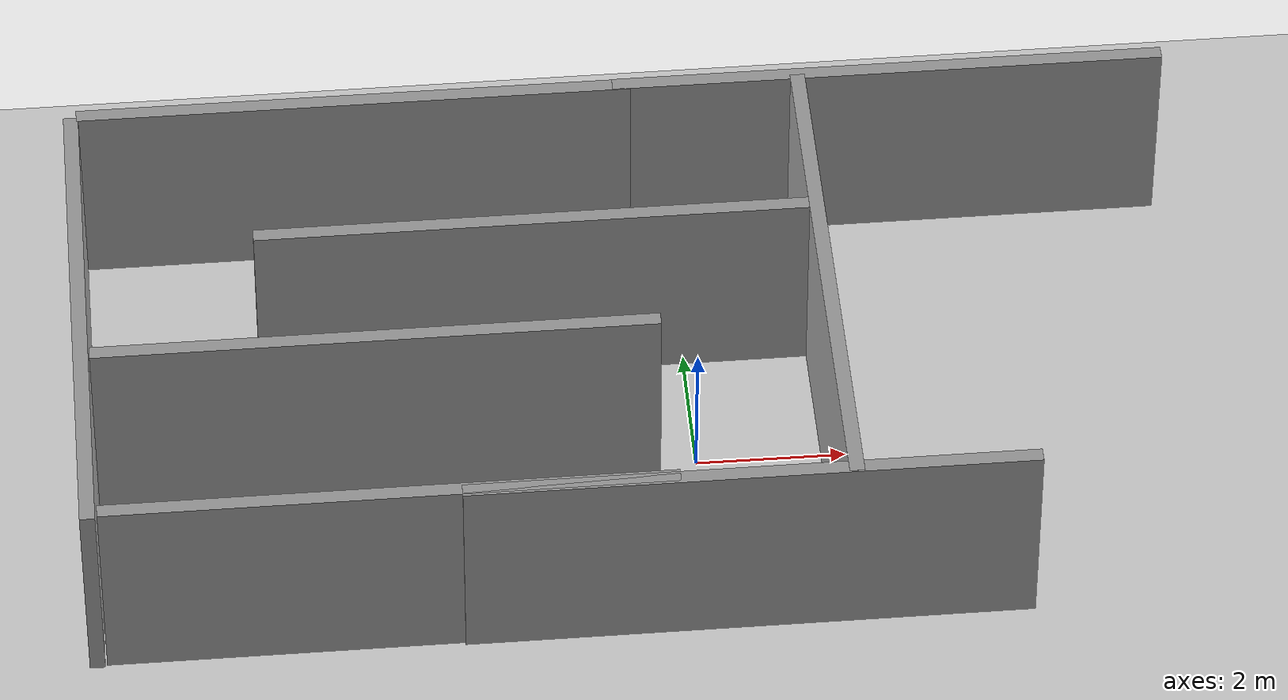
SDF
<sdf version="1.4">
 <world name="default">
  <light name="sun" type="directional">
   <pose>0 0 10 0 -0 0</pose>
   <diffuse>0.8 0.8 0.8 1</diffuse>
   <specular>0.2 0.2 0.2 1</specular>
   <attenuation>
    <range>1000</range>
    <constant>0.9</constant>
    <linear>0.01</linear>
    <quadratic>0.001</quadratic>
   </attenuation>
   <direction>-0.5 0.1 -0.9</direction>
  </light>
  <model name="ground_plane">
   <static>1</static>
   <link name="link">
    <collision name="collision">
     <geometry><plane><normal>0 0 1</normal><size>100 100</size></plane></geometry>
     <surface><friction><ode><mu>100</mu><mu2>50</mu2></ode></friction></surface>
    </collision>
    <visual name="visual">
     <cast_shadows>0</cast_shadows>
     <geometry><plane><normal>0 0 1</normal><size>100 100</size></plane></geometry>
     <material>
      <script><uri>file://media/materials/scripts/gazebo.material</uri><name>Gazebo/Grey</name></script>
     </material>
    </visual>
    <velocity_decay><linear>0</linear><angular>0</angular></velocity_decay>
   </link>
  </model>
  <physics type="ode">
   <max_step_size>0.001</max_step_size>
   <real_time_factor>1</real_time_factor>
   <real_time_update_rate>1000</real_time_update_rate>
   <gravity>0 0 -9.8</gravity>
  </physics>
  <scene><ambient>0.4 0.4 0.4 1</ambient><background>0.7 0.7 0.7 1</background><shadows>1</shadows></scene>
  <spherical_coordinates>
   <surface_model>EARTH_WGS84</surface_model>
   <latitude_deg>0</latitude_deg>
   <longitude_deg>0</longitude_deg>
   <elevation>0</elevation>
   <heading_deg>0</heading_deg>
  </spherical_coordinates>
  <model name="grey_wall">
   <static>1</static>
   <link name="link">
    <pose>0 0 1.4 0 -0 0</pose>
    <collision name="collision"><geometry><box><size>7.5 0.2 2.8</size></box></geometry></collision>
    <visual name="visual">
     <cast_shadows>0</cast_shadows>
     <geometry><box><size>7.5 0.2 2.8</size></box></geometry>
     <material>
      <script>
       <uri>model://grey_wall/materials/scripts</uri>
       <uri>model://grey_wall/materials/textures</uri>
       <name>vrc/grey_wall</name>
      </script>
     </material>
    </visual>
    <velocity_decay><linear>0</linear><angular>0</angular></velocity_decay>
   </link>
   <pose>-4.2611 4.51369 0 0 -0 0</pose>
  </model>
  <model name="grey_wall_0">
   <static>1</static>
   <link name="link">
    <pose>0 0 1.4 0 -0 0</pose>
    <collision name="collision"><geometry><box><size>7.5 0.2 2.8</size></box></geometry></collision>
    <visual name="visual">
     <cast_shadows>0</cast_shadows>
     <geometry><box><size>7.5 0.2 2.8</size></box></geometry>
     <material>
      <script>
       <uri>model://grey_wall/materials/scripts</uri>
       <uri>model://grey_wall/materials/textures</uri>
       <name>vrc/grey_wall</name>
      </script>
     </material>
    </visual>
    <velocity_decay><linear>0</linear><angular>0</angular></velocity_decay>
   </link>
   <pose>-4.2535 -2.88655 0 0 -0 0</pose>
  </model>
  <model name="grey_wall_1">
   <static>1</static>
   <link name="link">
    <pose>0 0 1.4 0 -0 0</pose>
    <collision name="collision"><geometry><box><size>7.5 0.2 2.8</size></box></geometry></collision>
    <visual name="visual">
     <cast_shadows>0</cast_shadows>
     <geometry><box><size>7.5 0.2 2.8</size></box></geometry>
     <material>
      <script>
       <uri>model://grey_wall/materials/scripts</uri>
       <uri>model://grey_wall/materials/textures</uri>
       <name>vrc/grey_wall</name>
      </script>
     </material>
    </visual>
    <velocity_decay><linear>0</linear><angular>0</angular></velocity_decay>
   </link>
   <pose>-8.1083 0.730642 0 0 0 -1.57665</pose>
  </model>
  <model name="grey_wall_2">
   <static>1</static>
   <link name="link">
    <pose>0 0 1.4 0 -0 0</pose>
    <collision name="collision"><geometry><box><size>7.5 0.2 2.8</size></box></geometry></collision>
    <visual name="visual">
     <cast_shadows>0</cast_shadows>
     <geometry><box><size>7.5 0.2 2.8</size></box></geometry>
     <material>
      <script>
       <uri>model://grey_wall/materials/scripts</uri>
       <uri>model://grey_wall/materials/textures</uri>
       <name>vrc/grey_wall</name>
      </script>
     </material>
    </visual>
    <velocity_decay><linear>0</linear><angular>0</angular></velocity_decay>
   </link>
   <pose>-4.24797 -0.018711 0 0 -0 0</pose>
  </model>
  <model name="grey_wall_3">
   <static>1</static>
   <link name="link">
    <pose>0 0 1.4 0 -0 0</pose>
    <collision name="collision"><geometry><box><size>7.5 0.2 2.8</size></box></geometry></collision>
    <visual name="visual">
     <cast_shadows>0</cast_shadows>
     <geometry><box><size>7.5 0.2 2.8</size></box></geometry>
     <material>
      <script>
       <uri>model://grey_wall/materials/scripts</uri>
       <uri>model://grey_wall/materials/textures</uri>
       <name>vrc/grey_wall</name>
      </script>
     </material>
    </visual>
    <velocity_decay><linear>0</linear><angular>0</angular></velocity_decay>
   </link>
   <pose>1.76758 0.74778 0.00212 0 0 -1.57102</pose>
  </model>
  <model name="grey_wall_4">
   <static>1</static>
   <link name="link">
    <pose>0 0 1.4 0 -0 0</pose>
    <collision name="collision"><geometry><box><size>7.5 0.2 2.8</size></box></geometry></collision>
    <visual name="visual">
     <cast_shadows>0</cast_shadows>
     <geometry><box><size>7.5 0.2 2.8</size></box></geometry>
     <material>
      <script>
       <uri>model://grey_wall/materials/scripts</uri>
       <uri>model://grey_wall/materials/textures</uri>
       <name>vrc/grey_wall</name>
      </script>
     </material>
    </visual>
    <velocity_decay><linear>0</linear><angular>0</angular></velocity_decay>
   </link>
   <pose>0.431481 -2.92293 0 0 -0 0</pose>
  </model>
  <model name="grey_wall_5">
   <static>1</static>
   <link name="link">
    <pose>0 0 1.4 0 -0 0</pose>
    <collision name="collision"><geometry><box><size>7.5 0.2 2.8</size></box></geometry></collision>
    <visual name="visual">
     <cast_shadows>0</cast_shadows>
     <geometry><box><size>7.5 0.2 2.8</size></box></geometry>
     <material>
      <script>
       <uri>model://grey_wall/materials/scripts</uri>
       <uri>model://grey_wall/materials/textures</uri>
       <name>vrc/grey_wall</name>
      </script>
     </material>
    </visual>
    <velocity_decay><linear>0</linear><angular>0</angular></velocity_decay>
   </link>
   <pose>-2 2 0 0 -0 0</pose>
  </model>
  <model name="grey_wall_6">
   <static>1</static>
   <link name="link">
    <pose>0 0 1.4 0 -0 0</pose>
    <collision name="collision"><geometry><box><size>7.5 0.2 2.8</size></box></geometry></collision>
    <visual name="visual">
     <cast_shadows>0</cast_shadows>
     <geometry><box><size>7.5 0.2 2.8</size></box></geometry>
     <material>
      <script>
       <uri>model://grey_wall/materials/scripts</uri>
       <uri>model://grey_wall/materials/textures</uri>
       <name>vrc/grey_wall</name>
      </script>
     </material>
    </visual>
    <velocity_decay><linear>0</linear><angular>0</angular></velocity_decay>
   </link>
   <pose>3 4.52028 0 0 -0 0</pose>
  </model>
  <model name="BuildingCorridor">
   <link name="Stairs_1">
    <visual name="Stairs_1_Visual_0">
     <pose>-6.5 -1.505 0 0 -0 0</pose>
     <geometry><box><size>1 1.01 0</size></box></geometry>
     <material>
      <script><uri>file://media/materials/scripts/gazebo.material</uri><name>Gazebo/Green</name></script>
     </material>
    </visual>
    <collision name="Stairs_1_Collision_0">
     <geometry><box><size>1 1.01 0</size></box></geometry>
     <pose>-6.5 -1.505 0 0 -0 0</pose>
    </collision>
    <velocity_decay><linear>0</linear><angular>0</angular></velocity_decay>
   </link>
   <link name="Stairs_3">
    <visual name="Stairs_3_Visual_0">
     <pose>0.5 3.50696 0 0 -0 0</pose>
     <geometry><box><size>1 1 0</size></box></geometry>
     <material>
      <script><uri>file://media/materials/scripts/gazebo.material</uri><name>Gazebo/Red</name></script>
     </material>
    </visual>
    <collision name="Stairs_3_Collision_0">
     <geometry><box><size>1 1 0</size></box></geometry>
     <pose>0.5 3.50696 0 0 -0 0</pose>
    </collision>
    <velocity_decay><linear>0</linear><angular>0</angular></velocity_decay>
   </link>
   <static>1</static>
  </model>
 </world>
</sdf>
